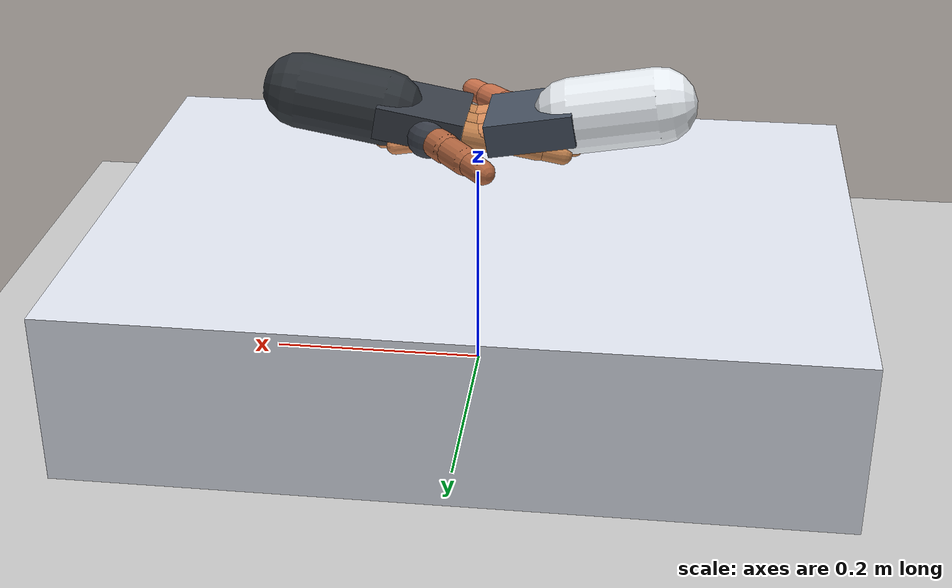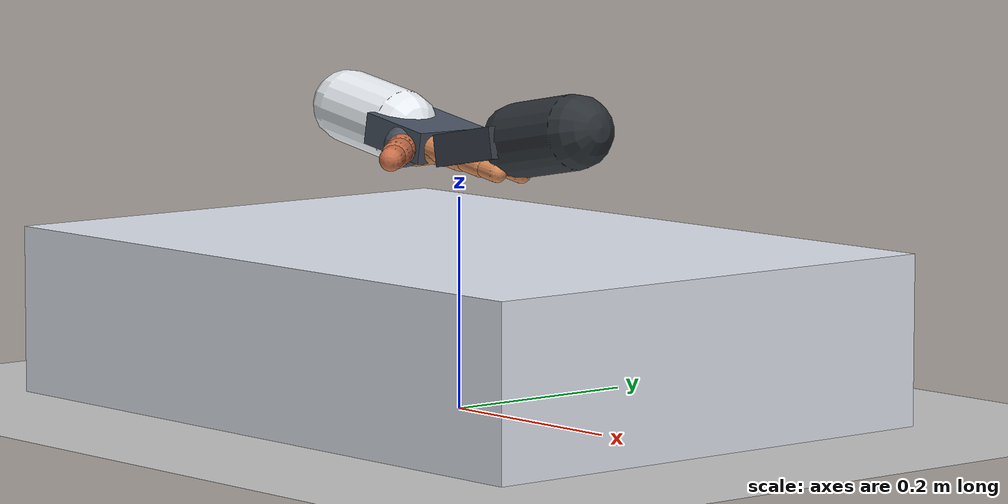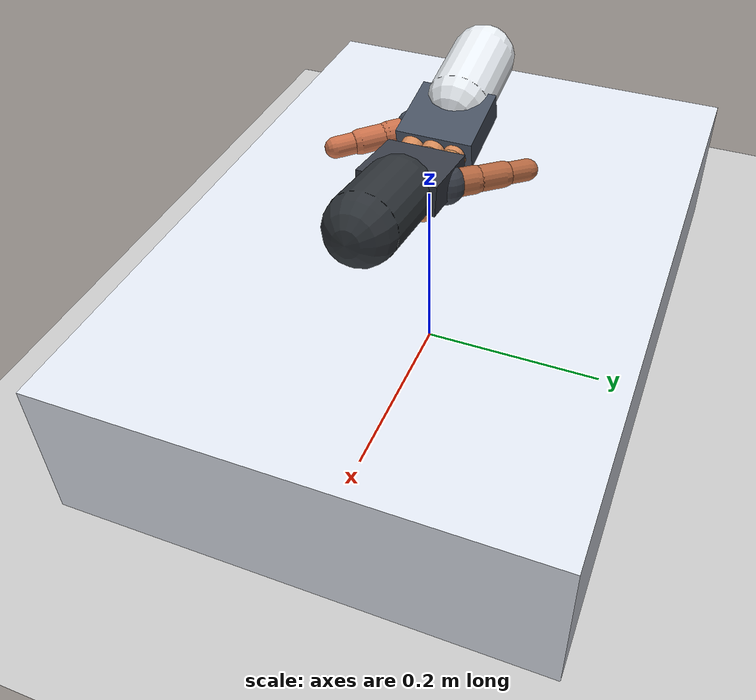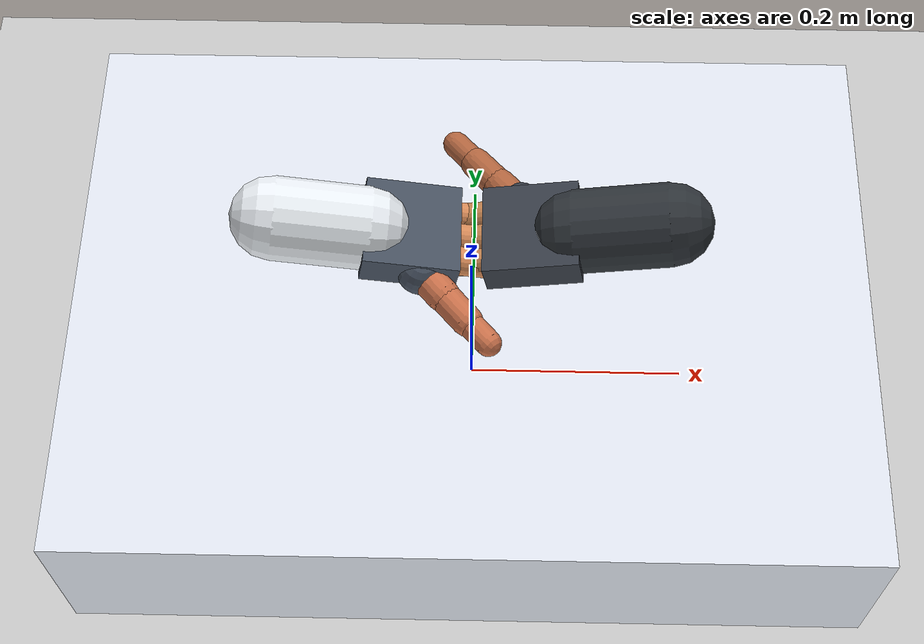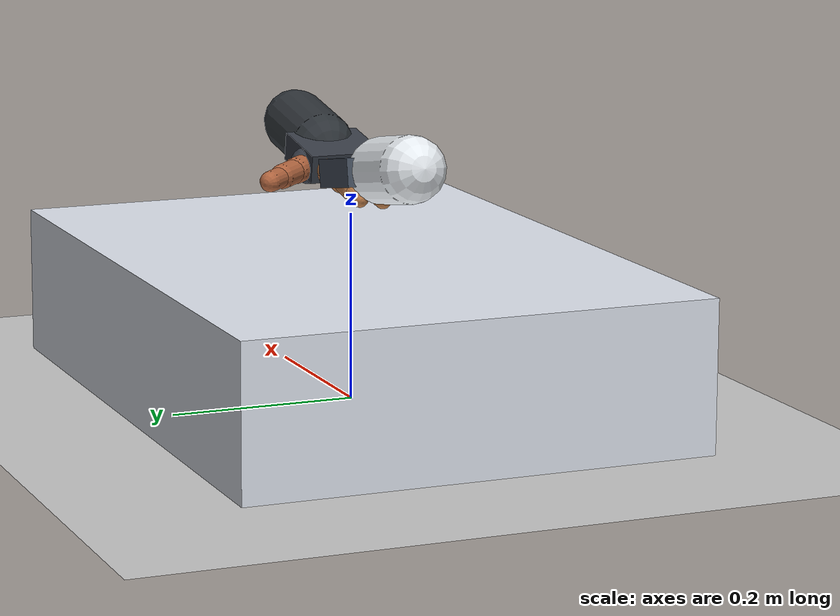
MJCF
<mujoco model="dual_robot_handshake_simulation">
  <compiler angle="degree" coordinate="local"/>

  <option timestep="0.002" gravity="0 0 -9.81" cone="elliptic"/>

  <visual>
    <quality shadowsize="2048"/>
    <headlight ambient="0.4 0.4 0.4" diffuse="0.8 0.8 0.8" specular="0.2 0.2 0.2"/>
  </visual>

  <default>
    <joint limited="true" damping="0.2" armature="0.003"/>
    <geom friction="1.5 0.01 0.001" condim="4"/>
    <position kp="25" forcerange="-4.0 4.0"/>
  </default>

  <asset>
    <texture type="skybox" builtin="gradient" rgb1="0.2 0.3 0.4" rgb2="0 0 0" width="512" height="512"/>
    <texture name="plane_tex" type="2d" builtin="checker" rgb1="0.85 0.85 0.85" rgb2="0.7 0.7 0.7" width="512" height="512"/>
    <material name="plane_mat" texture="plane_tex" texrepeat="5 5" reflectance="0.2"/>

    <!-- Robot A (White/Titanium - Gravity) -->
    <material name="mat_arm_a" rgba="0.92 0.94 0.96 1.0" specular="0.6"/>
    <material name="mat_palm_a" rgba="0.28 0.32 0.38 1.0" specular="0.3"/>
    <material name="mat_finger_a" rgba="0.85 0.55 0.35 1.0" specular="0.2"/>
    <material name="mat_thumb_a" rgba="0.80 0.45 0.30 1.0" specular="0.2"/>

    <!-- Robot B (Dark Tungsten/Graphite - Ari/Geminy) -->
    <material name="mat_arm_b" rgba="0.18 0.20 0.22 1.0" specular="0.5"/>
    <material name="mat_palm_b" rgba="0.22 0.24 0.28 1.0" specular="0.3"/>
    <material name="mat_finger_b" rgba="0.75 0.50 0.30 1.0" specular="0.2"/>
    <material name="mat_thumb_b" rgba="0.70 0.40 0.25 1.0" specular="0.2"/>

    <material name="mat_table" rgba="0.88 0.90 0.94 1.0"/>
  </asset>

  <worldbody>
    <light pos="0 0 1.8" dir="0 0 -1" diffuse="0.9 0.9 0.9" specular="0.3 0.3 0.3"/>
    <geom name="floor" type="plane" size="1.5 1.5 0.05" material="plane_mat"/>

    <!-- 중앙 실험대 -->
    <body name="bench" pos="0 0 0.08">
      <geom name="bench_top" type="box" size="0.35 0.25 0.08" material="mat_table"/>
    </body>

    <!-- [로봇 A: 좌측 화이트/티타늄 핸드 - Gravity]                       -->
    <body name="robot_a_wrist" pos="-0.085 0 0.26" euler="0 10 0">
      <geom name="a_forearm" type="capsule" fromto="-0.08 0 0 0 0 0" size="0.035" material="mat_arm_a"/>
      <geom name="a_palm" type="box" size="0.040 0.040 0.015" pos="0.035 0 0" material="mat_palm_a"/>
      <geom name="a_thenar" type="sphere" size="0.020" pos="0.045 -0.032 -0.005" material="mat_palm_a"/>

      <!-- 대립 엄지 (3-DoF) -->
      <body name="a_thumb_base" pos="0.05 -0.038 -0.005" euler="25 -30 -40">
        <joint name="a_th_cmc" type="hinge" axis="0 0 1" range="-20 50"/>
        <geom name="a_th_cmc_g" type="capsule" fromto="0 0 0 0.022 0 0" size="0.014" material="mat_thumb_a"/>

        <body name="a_thumb_prox" pos="0.022 0 0">
          <joint name="a_th_mcp" type="hinge" axis="0 1 0" range="-10 65"/>
          <geom name="a_th_prox_g" type="capsule" fromto="0 0 0 0.030 0 0" size="0.013" material="mat_thumb_a"/>

          <body name="a_thumb_dist" pos="0.030 0 0">
            <joint name="a_th_ip" type="hinge" axis="0 1 0" range="-5 80"/>
            <geom name="a_th_dist_g" type="capsule" fromto="0 0 0 0.026 0 0" size="0.011" material="mat_thumb_a"/>
          </body>
        </body>
      </body>

      <!-- 검지 (3-DoF) -->
      <body name="a_idx_prox" pos="0.075 -0.022 0">
        <joint name="a_idx_mcp" type="hinge" axis="0 1 0" range="-10 85"/>
        <geom name="a_idx_p_g" type="capsule" fromto="0 0 0 0.040 0 0" size="0.012" material="mat_finger_a"/>
        <body name="a_idx_mid" pos="0.040 0 0">
          <joint name="a_idx_pip" type="hinge" axis="0 1 0" range="0 95"/>
          <geom name="a_idx_m_g" type="capsule" fromto="0 0 0 0.030 0 0" size="0.010" material="mat_finger_a"/>
          <body name="a_idx_dist" pos="0.030 0 0">
            <joint name="a_idx_dip" type="hinge" axis="0 1 0" range="0 80"/>
            <geom name="a_idx_d_g" type="capsule" fromto="0 0 0 0.022 0 0" size="0.009" material="mat_finger_a"/>
          </body>
        </body>
      </body>

      <!-- 중지 (3-DoF) -->
      <body name="a_mid_prox" pos="0.075 0 0">
        <joint name="a_mid_mcp" type="hinge" axis="0 1 0" range="-10 85"/>
        <geom name="a_mid_p_g" type="capsule" fromto="0 0 0 0.044 0 0" size="0.012" material="mat_finger_a"/>
        <body name="a_mid_mid" pos="0.044 0 0">
          <joint name="a_mid_pip" type="hinge" axis="0 1 0" range="0 95"/>
          <geom name="a_mid_m_g" type="capsule" fromto="0 0 0 0.033 0 0" size="0.010" material="mat_finger_a"/>
          <body name="a_mid_dist" pos="0.033 0 0">
            <joint name="a_mid_dip" type="hinge" axis="0 1 0" range="0 80"/>
            <geom name="a_mid_d_g" type="capsule" fromto="0 0 0 0.024 0 0" size="0.009" material="mat_finger_a"/>
          </body>
        </body>
      </body>

      <!-- 약지 (3-DoF) -->
      <body name="a_rng_prox" pos="0.075 0.022 0">
        <joint name="a_rng_mcp" type="hinge" axis="0 1 0" range="-10 85"/>
        <geom name="a_rng_p_g" type="capsule" fromto="0 0 0 0.038 0 0" size="0.011" material="mat_finger_a"/>
        <body name="a_rng_mid" pos="0.038 0 0">
          <joint name="a_rng_pip" type="hinge" axis="0 1 0" range="0 95"/>
          <geom name="a_rng_m_g" type="capsule" fromto="0 0 0 0.028 0 0" size="0.009" material="mat_finger_a"/>
          <body name="a_rng_dist" pos="0.028 0 0">
            <joint name="a_rng_dip" type="hinge" axis="0 1 0" range="0 80"/>
            <geom name="a_rng_d_g" type="capsule" fromto="0 0 0 0.020 0 0" size="0.008" material="mat_finger_a"/>
          </body>
        </body>
      </body>
    </body>

    <!-- [로봇 B: 우측 다크 텅스텐 핸드 - Ari/Geminy]                      -->
    <!-- 180도 회전되어 맞은편에서 악수 결합 대면 배치                     -->
    <body name="robot_b_wrist" pos="0.085 0 0.26" euler="0 -10 180">
      <geom name="b_forearm" type="capsule" fromto="-0.08 0 0 0 0 0" size="0.035" material="mat_arm_b"/>
      <geom name="b_palm" type="box" size="0.040 0.040 0.015" pos="0.035 0 0" material="mat_palm_b"/>
      <geom name="b_thenar" type="sphere" size="0.020" pos="0.045 -0.032 -0.005" material="mat_palm_b"/>

      <!-- 대립 엄지 (3-DoF) -->
      <body name="b_thumb_base" pos="0.05 -0.038 -0.005" euler="25 -30 -40">
        <joint name="b_th_cmc" type="hinge" axis="0 0 1" range="-20 50"/>
        <geom name="b_th_cmc_g" type="capsule" fromto="0 0 0 0.022 0 0" size="0.014" material="mat_thumb_b"/>

        <body name="b_thumb_prox" pos="0.022 0 0">
          <joint name="b_th_mcp" type="hinge" axis="0 1 0" range="-10 65"/>
          <geom name="b_th_prox_g" type="capsule" fromto="0 0 0 0.030 0 0" size="0.013" material="mat_thumb_b"/>

          <body name="b_thumb_dist" pos="0.030 0 0">
            <joint name="b_th_ip" type="hinge" axis="0 1 0" range="-5 80"/>
            <geom name="b_th_dist_g" type="capsule" fromto="0 0 0 0.026 0 0" size="0.011" material="mat_thumb_b"/>
          </body>
        </body>
      </body>

      <!-- 검지 (3-DoF) -->
      <body name="b_idx_prox" pos="0.075 -0.022 0">
        <joint name="b_idx_mcp" type="hinge" axis="0 1 0" range="-10 85"/>
        <geom name="b_idx_p_g" type="capsule" fromto="0 0 0 0.040 0 0" size="0.012" material="mat_finger_b"/>
        <body name="b_idx_mid" pos="0.040 0 0">
          <joint name="b_idx_pip" type="hinge" axis="0 1 0" range="0 95"/>
          <geom name="b_idx_m_g" type="capsule" fromto="0 0 0 0.030 0 0" size="0.010" material="mat_finger_b"/>
          <body name="b_idx_dist" pos="0.030 0 0">
            <joint name="b_idx_dip" type="hinge" axis="0 1 0" range="0 80"/>
            <geom name="b_idx_d_g" type="capsule" fromto="0 0 0 0.022 0 0" size="0.009" material="mat_finger_b"/>
          </body>
        </body>
      </body>

      <!-- 중지 (3-DoF) -->
      <body name="b_mid_prox" pos="0.075 0 0">
        <joint name="b_mid_mcp" type="hinge" axis="0 1 0" range="-10 85"/>
        <geom name="b_mid_p_g" type="capsule" fromto="0 0 0 0.044 0 0" size="0.012" material="mat_finger_b"/>
        <body name="b_mid_mid" pos="0.044 0 0">
          <joint name="b_mid_pip" type="hinge" axis="0 1 0" range="0 95"/>
          <geom name="b_mid_m_g" type="capsule" fromto="0 0 0 0.033 0 0" size="0.010" material="mat_finger_b"/>
          <body name="b_mid_dist" pos="0.033 0 0">
            <joint name="b_mid_dip" type="hinge" axis="0 1 0" range="0 80"/>
            <geom name="b_mid_d_g" type="capsule" fromto="0 0 0 0.024 0 0" size="0.009" material="mat_finger_b"/>
          </body>
        </body>
      </body>

      <!-- 약지 (3-DoF) -->
      <body name="b_rng_prox" pos="0.075 0.022 0">
        <joint name="b_rng_mcp" type="hinge" axis="0 1 0" range="-10 85"/>
        <geom name="b_rng_p_g" type="capsule" fromto="0 0 0 0.038 0 0" size="0.011" material="mat_finger_b"/>
        <body name="b_rng_mid" pos="0.038 0 0">
          <joint name="b_rng_pip" type="hinge" axis="0 1 0" range="0 95"/>
          <geom name="b_rng_m_g" type="capsule" fromto="0 0 0 0.028 0 0" size="0.009" material="mat_finger_b"/>
          <body name="b_rng_dist" pos="0.028 0 0">
            <joint name="b_rng_dip" type="hinge" axis="0 1 0" range="0 80"/>
            <geom name="b_rng_d_g" type="capsule" fromto="0 0 0 0.020 0 0" size="0.008" material="mat_finger_b"/>
          </body>
        </body>
      </body>
    </body>
  </worldbody>

  <!-- 구동기 (총 24-DoF: 양손 각각 12개 관절 독립 제어)                   -->
  <actuator>
    <!-- Robot A Actuators -->
    <position name="act_a_th_cmc" joint="a_th_cmc" ctrlrange="-20 50" kp="25"/>
    <position name="act_a_th_mcp" joint="a_th_mcp" ctrlrange="-10 65" kp="25"/>
    <position name="act_a_th_ip"  joint="a_th_ip"  ctrlrange="-5 80"  kp="20"/>
    <position name="act_a_idx_mcp" joint="a_idx_mcp" ctrlrange="-10 85" kp="20"/>
    <position name="act_a_idx_pip" joint="a_idx_pip" ctrlrange="0 95"   kp="15"/>
    <position name="act_a_idx_dip" joint="a_idx_dip" ctrlrange="0 80"   kp="12"/>
    <position name="act_a_mid_mcp" joint="a_mid_mcp" ctrlrange="-10 85" kp="22"/>
    <position name="act_a_mid_pip" joint="a_mid_pip" ctrlrange="0 95"   kp="16"/>
    <position name="act_a_mid_dip" joint="a_mid_dip" ctrlrange="0 80"   kp="12"/>
    <position name="act_a_rng_mcp" joint="a_rng_mcp" ctrlrange="-10 85" kp="18"/>
    <position name="act_a_rng_pip" joint="a_rng_pip" ctrlrange="0 95"   kp="14"/>
    <position name="act_a_rng_dip" joint="a_rng_dip" ctrlrange="0 80"   kp="10"/>

    <!-- Robot B Actuators -->
    <position name="act_b_th_cmc" joint="b_th_cmc" ctrlrange="-20 50" kp="25"/>
    <position name="act_b_th_mcp" joint="b_th_mcp" ctrlrange="-10 65" kp="25"/>
    <position name="act_b_th_ip"  joint="b_th_ip"  ctrlrange="-5 80"  kp="20"/>
    <position name="act_b_idx_mcp" joint="b_idx_mcp" ctrlrange="-10 85" kp="20"/>
    <position name="act_b_idx_pip" joint="b_idx_pip" ctrlrange="0 95"   kp="15"/>
    <position name="act_b_idx_dip" joint="b_idx_dip" ctrlrange="0 80"   kp="12"/>
    <position name="act_b_mid_mcp" joint="b_mid_mcp" ctrlrange="-10 85" kp="22"/>
    <position name="act_b_mid_pip" joint="b_mid_pip" ctrlrange="0 95"   kp="16"/>
    <position name="act_b_mid_dip" joint="b_mid_dip" ctrlrange="0 80"   kp="12"/>
    <position name="act_b_rng_mcp" joint="b_rng_mcp" ctrlrange="-10 85" kp="18"/>
    <position name="act_b_rng_pip" joint="b_rng_pip" ctrlrange="0 95"   kp="14"/>
    <position name="act_b_rng_dip" joint="b_rng_dip" ctrlrange="0 80"   kp="10"/>
  </actuator>
</mujoco>
